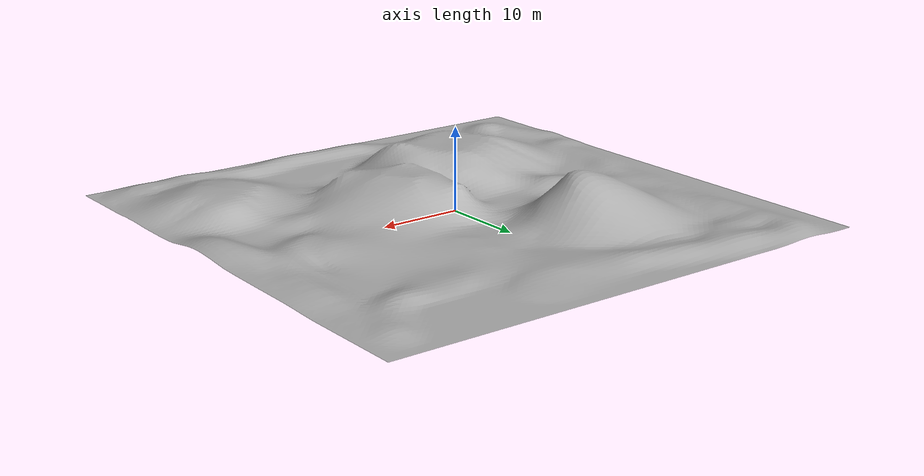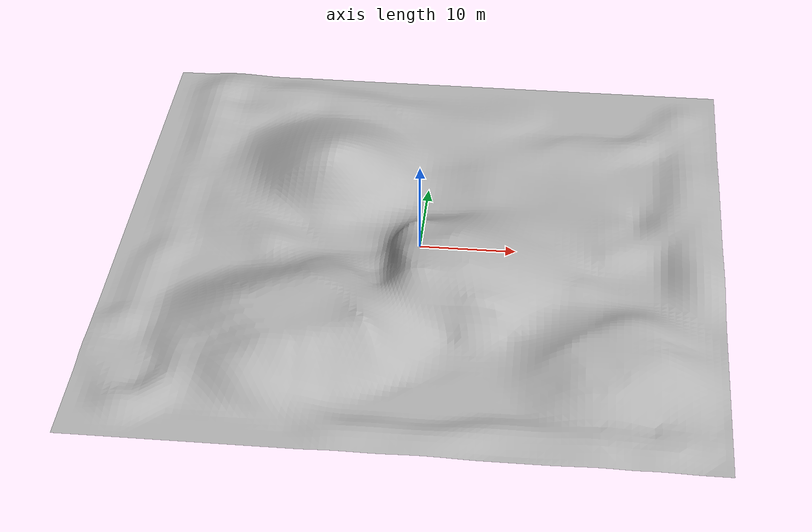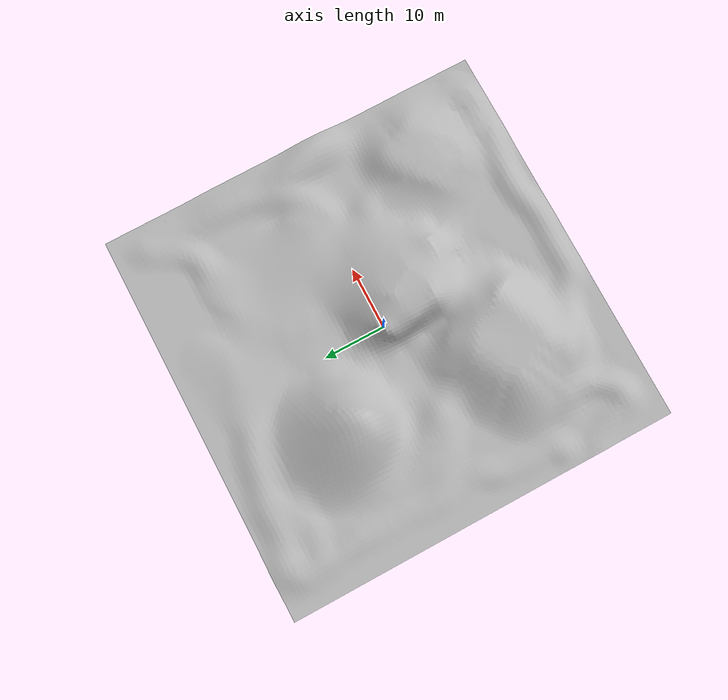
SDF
<?xml version="1.0" ?>
<sdf version="1.6">
  <model name="farm_terrain">
    <pose>0 0 0 0 0 0</pose>
    <static>true</static> <!-- Set to true for static models -->
    <link name="link">
      <visual name="visual">
        <geometry>
          <mesh>
            <uri>model://myfarm/meshes/myfarm.dae</uri>
          </mesh>
        </geometry>
        <material>
          <script>
            <uri>model://myfarm/materials/scripts/</uri>
            <uri>model://myfarm/materials/textures/</uri>
            <name>RepeatedGrass/Diffuse</name>
          </script>
        </material>
      </visual>
      <collision name="collision">
        <geometry>
          <mesh>
            <uri>model://myfarm/meshes/myfarm.dae</uri>
          </mesh>
        </geometry>
      </collision>
    </link>
  </model>
</sdf>
